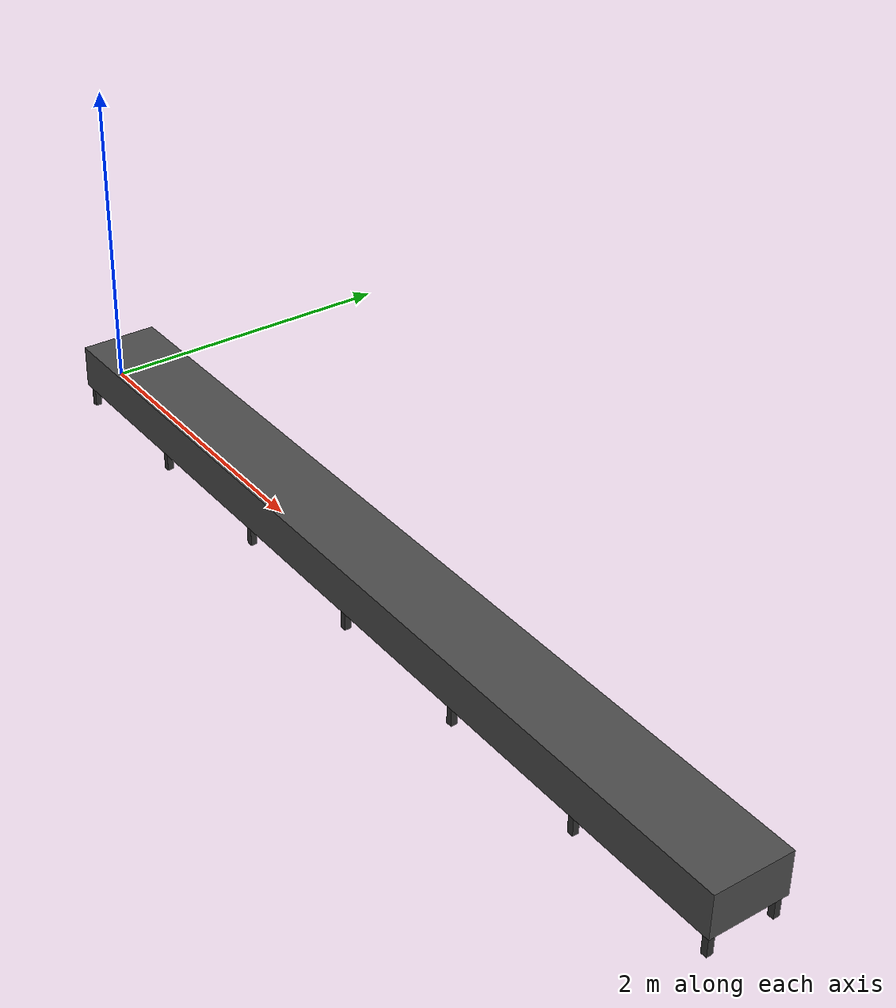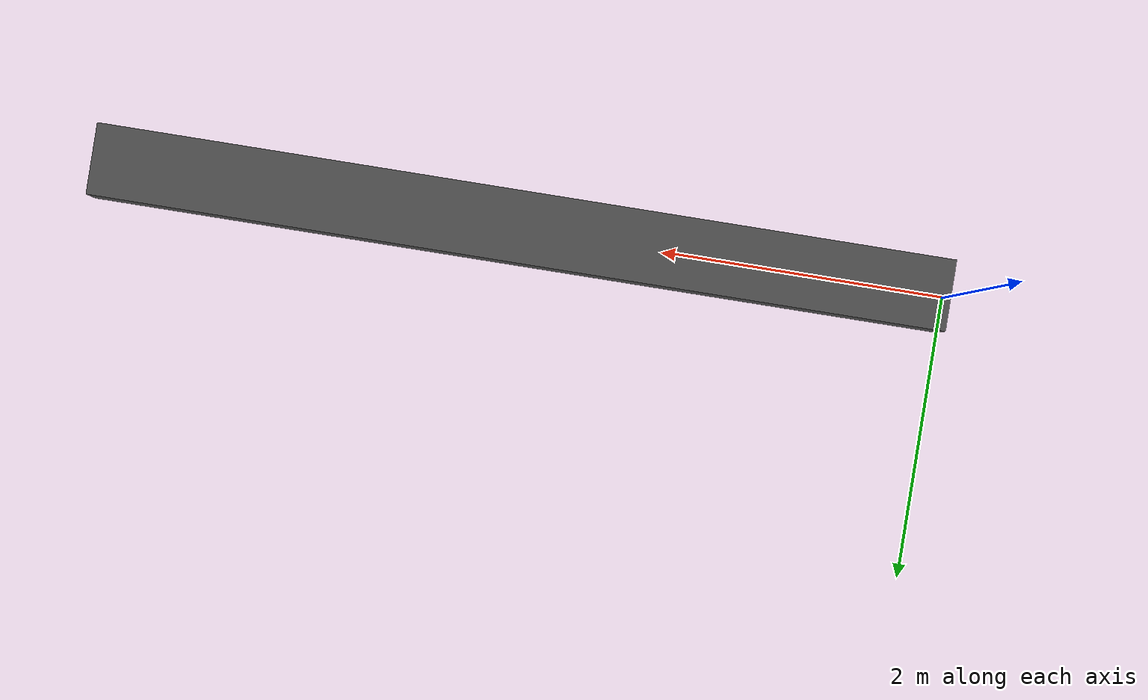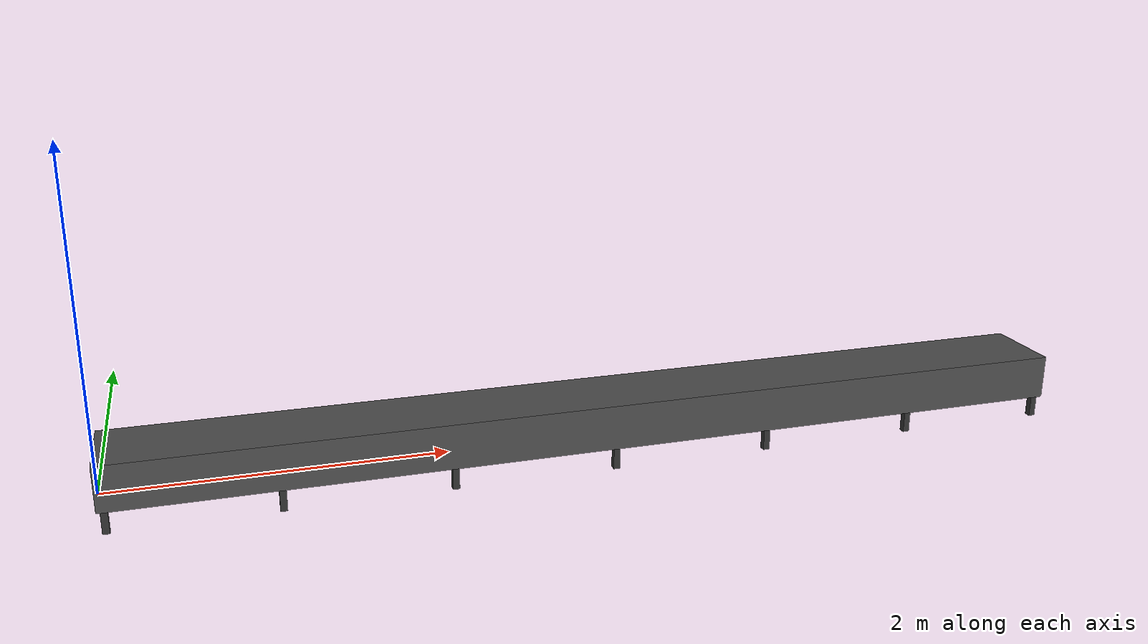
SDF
<?xml version="1.0" ?>
<sdf version="1.8">
<model name="conveyor_frame_6m">
    <static>true</static>
    <pose>3.0 0 0.14 0 0 0</pose>
    <link name="link">
      <inertial><mass>600000</mass>
        <inertia><ixx>6e6</ixx><ixy>0</ixy><ixz>0</ixz>
                 <iyy>6e6</iyy><iyz>0</iyz><izz>6e6</izz></inertia>
      </inertial>

      <!-- Main body (6.0m long) -->
      <collision name="frame_col">
        <geometry><box><size>6.0 0.5 0.28</size></box></geometry>
      </collision>
      <visual name="frame_vis">
        <geometry><box><size>6.0 0.5 0.28</size></box></geometry>
        <material>
          <ambient>0.28 0.28 0.28 1</ambient>
          <diffuse>0.30 0.30 0.30 1</diffuse>
          <specular>0.5 0.5 0.5 1</specular>
        </material>
      </visual>

      <!-- Legs (every 1m) -->
      <visual name="leg_1l"><pose>-2.96  0.21 -0.14 0 0 0</pose>
        <geometry><box><size>0.04 0.04 0.28</size></box></geometry>
        <material><ambient>0.2 0.2 0.2 1</ambient><diffuse>0.2 0.2 0.2 1</diffuse></material></visual>
      <visual name="leg_1r"><pose>-2.96 -0.21 -0.14 0 0 0</pose>
        <geometry><box><size>0.04 0.04 0.28</size></box></geometry>
        <material><ambient>0.2 0.2 0.2 1</ambient><diffuse>0.2 0.2 0.2 1</diffuse></material></visual>

      <visual name="leg_2l"><pose>-2.0   0.21 -0.14 0 0 0</pose>
        <geometry><box><size>0.04 0.04 0.28</size></box></geometry>
        <material><ambient>0.2 0.2 0.2 1</ambient><diffuse>0.2 0.2 0.2 1</diffuse></material></visual>
      <visual name="leg_2r"><pose>-2.0  -0.21 -0.14 0 0 0</pose>
        <geometry><box><size>0.04 0.04 0.28</size></box></geometry>
        <material><ambient>0.2 0.2 0.2 1</ambient><diffuse>0.2 0.2 0.2 1</diffuse></material></visual>

      <visual name="leg_3l"><pose>-1.0   0.21 -0.14 0 0 0</pose>
        <geometry><box><size>0.04 0.04 0.28</size></box></geometry>
        <material><ambient>0.2 0.2 0.2 1</ambient><diffuse>0.2 0.2 0.2 1</diffuse></material></visual>
      <visual name="leg_3r"><pose>-1.0  -0.21 -0.14 0 0 0</pose>
        <geometry><box><size>0.04 0.04 0.28</size></box></geometry>
        <material><ambient>0.2 0.2 0.2 1</ambient><diffuse>0.2 0.2 0.2 1</diffuse></material></visual>

      <visual name="leg_4l"><pose> 0.0   0.21 -0.14 0 0 0</pose>
        <geometry><box><size>0.04 0.04 0.28</size></box></geometry>
        <material><ambient>0.2 0.2 0.2 1</ambient><diffuse>0.2 0.2 0.2 1</diffuse></material></visual>
      <visual name="leg_4r"><pose> 0.0  -0.21 -0.14 0 0 0</pose>
        <geometry><box><size>0.04 0.04 0.28</size></box></geometry>
        <material><ambient>0.2 0.2 0.2 1</ambient><diffuse>0.2 0.2 0.2 1</diffuse></material></visual>

      <visual name="leg_5l"><pose> 1.0   0.21 -0.14 0 0 0</pose>
        <geometry><box><size>0.04 0.04 0.28</size></box></geometry>
        <material><ambient>0.2 0.2 0.2 1</ambient><diffuse>0.2 0.2 0.2 1</diffuse></material></visual>
      <visual name="leg_5r"><pose> 1.0  -0.21 -0.14 0 0 0</pose>
        <geometry><box><size>0.04 0.04 0.28</size></box></geometry>
        <material><ambient>0.2 0.2 0.2 1</ambient><diffuse>0.2 0.2 0.2 1</diffuse></material></visual>

      <visual name="leg_6l"><pose> 2.0   0.21 -0.14 0 0 0</pose>
        <geometry><box><size>0.04 0.04 0.28</size></box></geometry>
        <material><ambient>0.2 0.2 0.2 1</ambient><diffuse>0.2 0.2 0.2 1</diffuse></material></visual>
      <visual name="leg_6r"><pose> 2.0  -0.21 -0.14 0 0 0</pose>
        <geometry><box><size>0.04 0.04 0.28</size></box></geometry>
        <material><ambient>0.2 0.2 0.2 1</ambient><diffuse>0.2 0.2 0.2 1</diffuse></material></visual>

      <visual name="leg_7l"><pose> 2.96  0.21 -0.14 0 0 0</pose>
        <geometry><box><size>0.04 0.04 0.28</size></box></geometry>
        <material><ambient>0.2 0.2 0.2 1</ambient><diffuse>0.2 0.2 0.2 1</diffuse></material></visual>
      <visual name="leg_7r"><pose> 2.96 -0.21 -0.14 0 0 0</pose>
        <geometry><box><size>0.04 0.04 0.28</size></box></geometry>
        <material><ambient>0.2 0.2 0.2 1</ambient><diffuse>0.2 0.2 0.2 1</diffuse></material></visual>

      <!-- Cross beams -->
      <visual name="beam_1"><pose>-2.96 0 -0.10 0 0 0</pose>
        <geometry><box><size>0.04 0.46 0.04</size></box></geometry>
        <material><ambient>0.2 0.2 0.2 1</ambient><diffuse>0.2 0.2 0.2 1</diffuse></material></visual>
      <visual name="beam_2"><pose>-2.0 0 -0.10 0 0 0</pose>
        <geometry><box><size>0.04 0.46 0.04</size></box></geometry>
        <material><ambient>0.2 0.2 0.2 1</ambient><diffuse>0.2 0.2 0.2 1</diffuse></material></visual>
      <visual name="beam_3"><pose>-1.0 0 -0.10 0 0 0</pose>
        <geometry><box><size>0.04 0.46 0.04</size></box></geometry>
        <material><ambient>0.2 0.2 0.2 1</ambient><diffuse>0.2 0.2 0.2 1</diffuse></material></visual>
      <visual name="beam_4"><pose>0 0 -0.10 0 0 0</pose>
        <geometry><box><size>0.04 0.46 0.04</size></box></geometry>
        <material><ambient>0.2 0.2 0.2 1</ambient><diffuse>0.2 0.2 0.2 1</diffuse></material></visual>
      <visual name="beam_5"><pose>1.0 0 -0.10 0 0 0</pose>
        <geometry><box><size>0.04 0.46 0.04</size></box></geometry>
        <material><ambient>0.2 0.2 0.2 1</ambient><diffuse>0.2 0.2 0.2 1</diffuse></material></visual>
      <visual name="beam_6"><pose>2.0 0 -0.10 0 0 0</pose>
        <geometry><box><size>0.04 0.46 0.04</size></box></geometry>
        <material><ambient>0.2 0.2 0.2 1</ambient><diffuse>0.2 0.2 0.2 1</diffuse></material></visual>
      <visual name="beam_7"><pose>2.96 0 -0.10 0 0 0</pose>
        <geometry><box><size>0.04 0.46 0.04</size></box></geometry>
        <material><ambient>0.2 0.2 0.2 1</ambient><diffuse>0.2 0.2 0.2 1</diffuse></material></visual>
    </link>
  </model>
</sdf>
